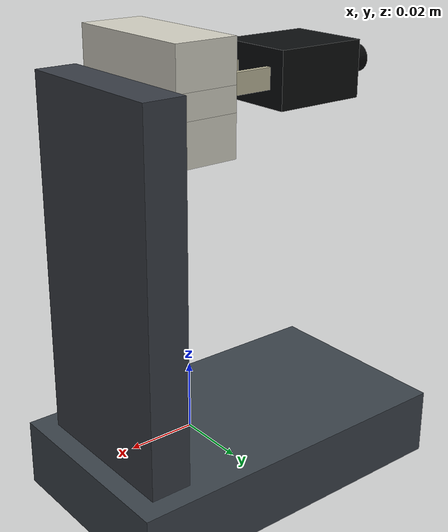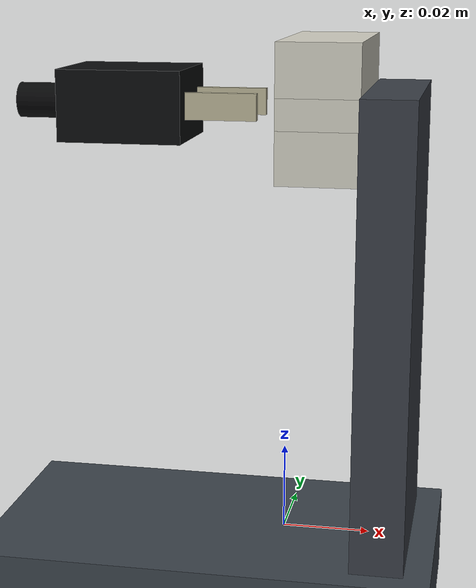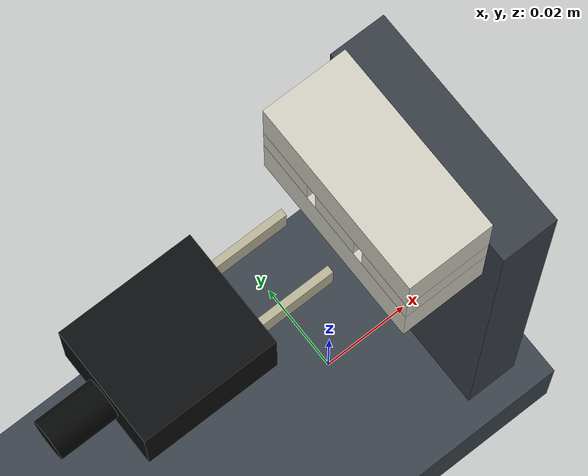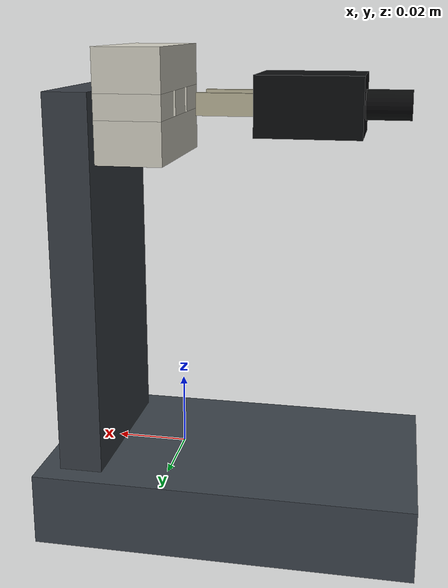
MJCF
<mujoco model="two_blade_v1_straight">
  <compiler angle="degree"/>
  <option timestep="0.0005" integrator="implicitfast" solver="Newton"
          iterations="100" gravity="0 0 -9.81"/>
  <default>
    <geom condim="3" friction="0.4 0.005 0.0001"
          solref="0.002 1" solimp="0.9 0.95 0.001"/>
    <site size="0.0006" group="3"/>
  </default>
  <visual><global offwidth="960" offheight="720"/><map znear="0.005"/></visual>
  <worldbody>
    <light name="key" directional="true" pos="-0.1 -0.2 0.4" dir="0.4 0.5 -1"
           ambient="0.25 0.25 0.25" diffuse="0.9 0.9 0.9"/>
    <light name="fill" directional="true" dir="1 -0.5 -0.3" castshadow="false"
           diffuse="0.5 0.5 0.5"/>
    <geom name="table" type="box" pos="0 0 -0.01" size="0.25 0.2 0.01"
          rgba="0.23 0.26 0.29 1"/>
    <geom name="mount" type="box" pos="0.024 0 0.052" size="0.006 0.024 0.052"
          rgba="0.22 0.24 0.27 1"/>
    <camera name="overview" pos="-0.135 -0.15 0.19"
            xyaxes="0.743 -0.669 0 0.30 0.333 0.894"/>
    <include file="socket.xml"/>
    <include file="plug.xml"/>
  </worldbody>
</mujoco>

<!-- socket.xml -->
<mujocoinclude>
  <body name="socket" pos="0 0 0.10">
    <geom name="socket_top" type="box" pos="0.009 0 0.0092"
          size="0.009 0.02 0.0058" rgba="0.82 0.81 0.76 1"/>
    <geom name="socket_bottom" type="box" pos="0.009 0 -0.0092"
          size="0.009 0.02 0.0058" rgba="0.82 0.81 0.76 1"/>
    <geom name="socket_middle" type="box" pos="0.009 0 0"
          size="0.009 0.00535 0.0034" rgba="0.82 0.81 0.76 1"/>
    <geom name="socket_left" type="box" pos="0.009 -0.013825 0"
          size="0.009 0.006175 0.0034" rgba="0.82 0.81 0.76 1"/>
    <geom name="socket_right" type="box" pos="0.009 0.013825 0"
          size="0.009 0.006175 0.0034" rgba="0.82 0.81 0.76 1"/>
    <site name="socket_entry" pos="0 0 0" rgba="0.2 0.5 1 1"/>
    <site name="slot_left_entry" pos="0 -0.0065 0"/>
    <site name="slot_right_entry" pos="0 0.0065 0"/>
    <site name="socket_seated_frame" pos="0 0 0"/>
    <site name="socket_preinsert_frame" pos="-0.022 0 0"/>
  </body>
</mujocoinclude>

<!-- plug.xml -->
<mujocoinclude>
  <!-- Body origin is the housing front / mating frame, not its COM. -->
  <body name="plug" pos="-0.022 0 0.10">
    <freejoint name="plug_free"/>
    <!-- Explicit 30 g inertial approximation; decorative geoms add no mass. -->
    <inertial pos="-0.012 0 0" mass="0.03" diaginertia="0.0000025 0.000006 0.0000065"/>
    <geom name="housing" type="box" pos="-0.014 0 0" size="0.014 0.012 0.008"
          rgba="0.045 0.05 0.055 1"/>
    <geom name="blade_left" type="box" pos="0.008 -0.0065 0"
          size="0.008 0.00075 0.003" rgba="0.72 0.70 0.59 1"/>
    <geom name="blade_right" type="box" pos="0.008 0.0065 0"
          size="0.008 0.00075 0.003" rgba="0.72 0.70 0.59 1"/>
    <geom name="strain_relief_visual" type="cylinder" pos="-0.034 0 0"
          euler="0 90 0" size="0.004 0.006" contype="0" conaffinity="0"
          group="2" mass="0" rgba="0.025 0.028 0.03 1"/>
    <site name="plug_mating_frame" pos="0 0 0" rgba="1 0.2 0.2 1"/>
    <site name="plug_grasp_frame" pos="-0.016 0 0" rgba="0.2 1 0.3 1"/>
    <site name="plug_tip_left" pos="0.016 -0.0065 0" rgba="1 0.3 0.2 1"/>
    <site name="plug_tip_right" pos="0.016 0.0065 0" rgba="1 0.3 0.2 1"/>
  </body>
</mujocoinclude>
